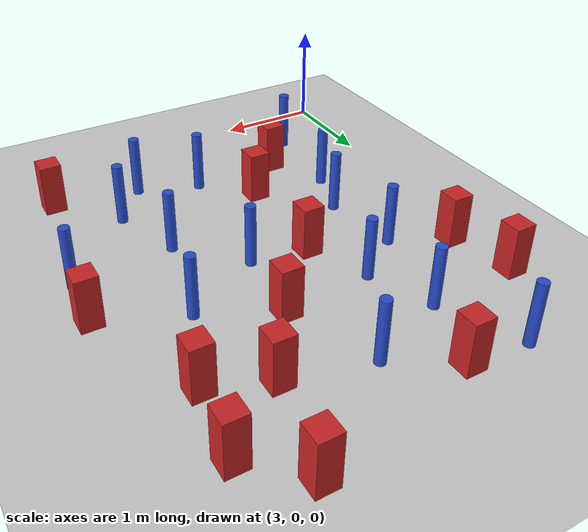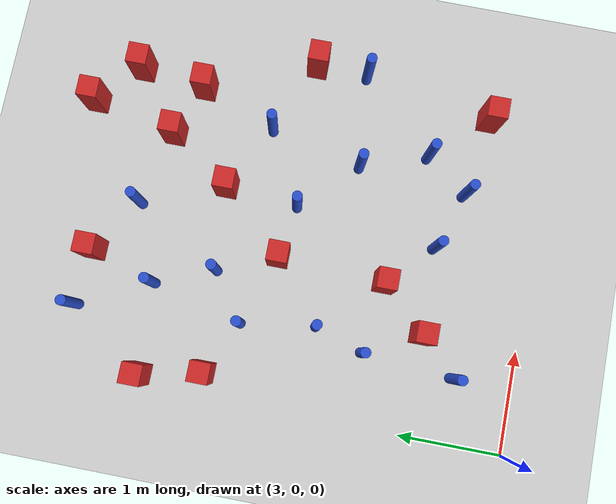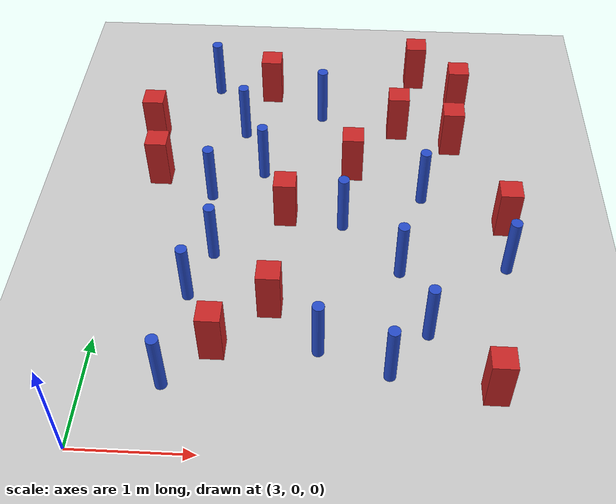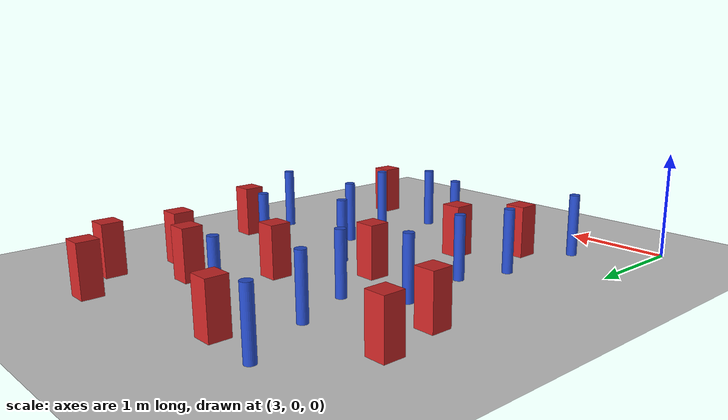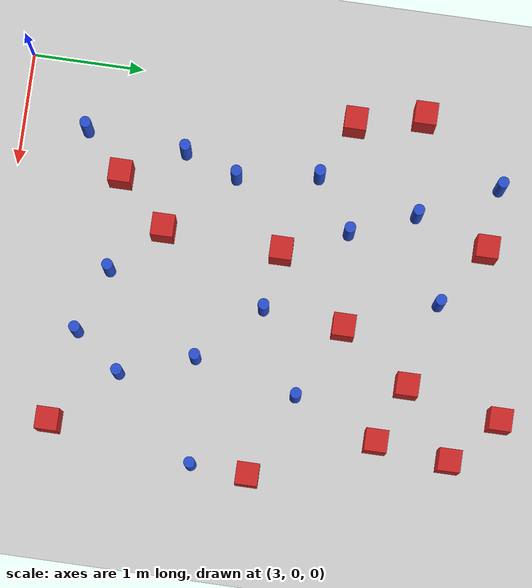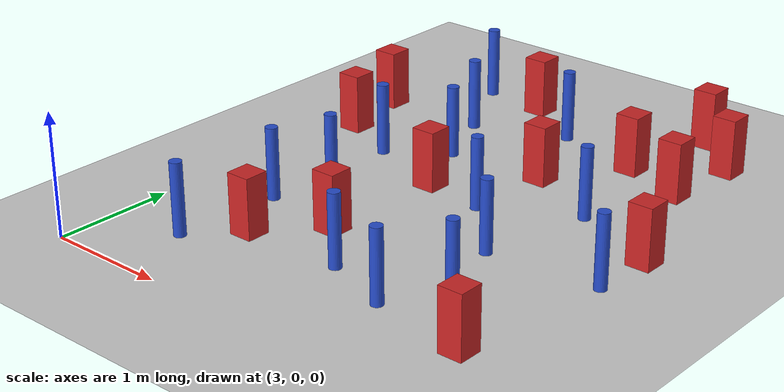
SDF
<sdf version="1.6">
 <world name="default">
  <model name="ground_plane">
   <static>1</static>
   <link name="link">
    <collision name="collision">
     <geometry><plane><normal>0 0 1</normal><size>100 100</size></plane></geometry>
     <surface><friction><ode><mu>100</mu><mu2>50</mu2></ode></friction></surface>
    </collision>
    <visual name="visual">
     <cast_shadows>0</cast_shadows>
     <geometry><plane><normal>0 0 1</normal><size>100 100</size></plane></geometry>
     <material>
      <ambient>1.0 1.0 1.0 1.0</ambient>
      <diffuse>0.8 0.8 0.8 1.0</diffuse>
      <specular>0.01 0.01 0.01 1.000000</specular>
     </material>
    </visual>
   </link>
  </model>
  <model name="square_post_obstacle7">
   <static>true</static>
   <pose>6.11921410497 4.16256446191 1.91545236811e-07 -7.35059704564e-06 1.12565212e-07 2.39332434364e-05</pose>
   <link name="link">
    <pose>0 0 0.25 0 -0 0</pose>
    <inertial>
     <mass>100</mass>
     <inertia>
      <ixx>0.166667</ixx>
      <ixy>0</ixy>
      <ixz>0</ixz>
      <iyy>0.166667</iyy>
      <iyz>0</iyz>
      <izz>0.166667</izz>
     </inertia>
    </inertial>
    <collision name="collision"><geometry><box><size>.2 .2 .5</size></box></geometry></collision>
    <visual name="visual">
     <geometry><box><size>.2 .2 .5</size></box></geometry>
     <material>
      <script><name>Gazebo/Red</name><uri>file://media/materials/scripts/gazebo.material</uri></script>
     </material>
    </visual>
   </link>
  </model>
  <model name="pole_obstacle13">
   <static>true</static>
   <pose>4.75254022368 3.89881679813 7.38925637345e-09 -8.47170692798e-08 1.24976764937e-08 -1.74513093023e-07</pose>
   <link name="link">
    <pose>0 0 0.3 0 -0 0</pose>
    <inertial>
     <mass>1</mass>
     <inertia><ixx>0.145833</ixx><ixy>0</ixy><ixz>0</ixz><iyy>0.145833</iyy><iyz>0</iyz><izz>0.125</izz></inertia>
    </inertial>
    <collision name="collision">
     <geometry><cylinder><radius>0.05</radius><length>.6</length></cylinder></geometry>
    </collision>
    <visual name="visual">
     <geometry><cylinder><radius>0.05</radius><length>.6</length></cylinder></geometry>
     <material>
      <script><name>Gazebo/Blue</name><uri>file://media/materials/scripts/gazebo.material</uri></script>
     </material>
    </visual>
   </link>
  </model>
  <model name="square_post_obstacle27">
   <static>true</static>
   <pose>3.9976284103 0.950378836151 1.91545236811e-07 -7.35059704564e-06 1.12565212e-07 2.39332434364e-05</pose>
   <link name="link">
    <pose>0 0 0.25 0 -0 0</pose>
    <inertial>
     <mass>100</mass>
     <inertia>
      <ixx>0.166667</ixx>
      <ixy>0</ixy>
      <ixz>0</ixz>
      <iyy>0.166667</iyy>
      <iyz>0</iyz>
      <izz>0.166667</izz>
     </inertia>
    </inertial>
    <collision name="collision"><geometry><box><size>.2 .2 .5</size></box></geometry></collision>
    <visual name="visual">
     <geometry><box><size>.2 .2 .5</size></box></geometry>
     <material>
      <script><name>Gazebo/Red</name><uri>file://media/materials/scripts/gazebo.material</uri></script>
     </material>
    </visual>
   </link>
  </model>
  <model name="square_post_obstacle38">
   <static>true</static>
   <pose>5.51444573957 3.71277571455 1.91545236811e-07 -7.35059704564e-06 1.12565212e-07 2.39332434364e-05</pose>
   <link name="link">
    <pose>0 0 0.25 0 -0 0</pose>
    <inertial>
     <mass>100</mass>
     <inertia>
      <ixx>0.166667</ixx>
      <ixy>0</ixy>
      <ixz>0</ixz>
      <iyy>0.166667</iyy>
      <iyz>0</iyz>
      <izz>0.166667</izz>
     </inertia>
    </inertial>
    <collision name="collision"><geometry><box><size>.2 .2 .5</size></box></geometry></collision>
    <visual name="visual">
     <geometry><box><size>.2 .2 .5</size></box></geometry>
     <material>
      <script><name>Gazebo/Red</name><uri>file://media/materials/scripts/gazebo.material</uri></script>
     </material>
    </visual>
   </link>
  </model>
  <model name="pole_obstacle39">
   <static>true</static>
   <pose>3.63261479475 0.594411479498 7.38925637345e-09 -8.471706928e-08 1.24976765177e-08 -1.74513093012e-07</pose>
   <link name="link">
    <pose>0 0 0.3 0 -0 0</pose>
    <inertial>
     <mass>1</mass>
     <inertia><ixx>0.145833</ixx><ixy>0</ixy><ixz>0</ixz><iyy>0.145833</iyy><iyz>0</iyz><izz>0.125</izz></inertia>
    </inertial>
    <collision name="collision">
     <geometry><cylinder><radius>0.05</radius><length>.6</length></cylinder></geometry>
    </collision>
    <visual name="visual">
     <geometry><cylinder><radius>0.05</radius><length>.6</length></cylinder></geometry>
     <material>
      <script><name>Gazebo/Blue</name><uri>file://media/materials/scripts/gazebo.material</uri></script>
     </material>
    </visual>
   </link>
  </model>
  <model name="pole_obstacle47">
   <static>true</static>
   <pose>5.00595628964 2.36893094893 7.38925637345e-09 -8.47170692798e-08 1.24976764937e-08 -1.74513093023e-07</pose>
   <link name="link">
    <pose>0 0 0.3 0 -0 0</pose>
    <inertial>
     <mass>1</mass>
     <inertia><ixx>0.145833</ixx><ixy>0</ixy><ixz>0</ixz><iyy>0.145833</iyy><iyz>0</iyz><izz>0.125</izz></inertia>
    </inertial>
    <collision name="collision">
     <geometry><cylinder><radius>0.05</radius><length>.6</length></cylinder></geometry>
    </collision>
    <visual name="visual">
     <geometry><cylinder><radius>0.05</radius><length>.6</length></cylinder></geometry>
     <material>
      <script><name>Gazebo/Blue</name><uri>file://media/materials/scripts/gazebo.material</uri></script>
     </material>
    </visual>
   </link>
  </model>
  <model name="square_post_obstacle52">
   <static>true</static>
   <pose>5.70429985319 4.55749865179 1.91545236811e-07 -7.35059704564e-06 1.12565212e-07 2.39332434364e-05</pose>
   <link name="link">
    <pose>0 0 0.25 0 -0 0</pose>
    <inertial>
     <mass>100</mass>
     <inertia>
      <ixx>0.166667</ixx>
      <ixy>0</ixy>
      <ixz>0</ixz>
      <iyy>0.166667</iyy>
      <iyz>0</iyz>
      <izz>0.166667</izz>
     </inertia>
    </inertial>
    <collision name="collision"><geometry><box><size>.2 .2 .5</size></box></geometry></collision>
    <visual name="visual">
     <geometry><box><size>.2 .2 .5</size></box></geometry>
     <material>
      <script><name>Gazebo/Red</name><uri>file://media/materials/scripts/gazebo.material</uri></script>
     </material>
    </visual>
   </link>
  </model>
  <model name="pole_obstacle53">
   <static>true</static>
   <pose>3.65114091582 4.30178377031 7.38925637345e-09 -8.47170692798e-08 1.24976765033e-08 -1.74513093019e-07</pose>
   <link name="link">
    <pose>0 0 0.3 0 -0 0</pose>
    <inertial>
     <mass>1</mass>
     <inertia><ixx>0.145833</ixx><ixy>0</ixy><ixz>0</ixz><iyy>0.145833</iyy><iyz>0</iyz><izz>0.125</izz></inertia>
    </inertial>
    <collision name="collision">
     <geometry><cylinder><radius>0.05</radius><length>.6</length></cylinder></geometry>
    </collision>
    <visual name="visual">
     <geometry><cylinder><radius>0.05</radius><length>.6</length></cylinder></geometry>
     <material>
      <script><name>Gazebo/Blue</name><uri>file://media/materials/scripts/gazebo.material</uri></script>
     </material>
    </visual>
   </link>
  </model>
  <model name="pole_obstacle54">
   <static>true</static>
   <pose>5.52081804444 1.83336792338 7.38925637345e-09 -8.471706928e-08 1.24976765134e-08 -1.74513093015e-07</pose>
   <link name="link">
    <pose>0 0 0.3 0 -0 0</pose>
    <inertial>
     <mass>1</mass>
     <inertia><ixx>0.145833</ixx><ixy>0</ixy><ixz>0</ixz><iyy>0.145833</iyy><iyz>0</iyz><izz>0.125</izz></inertia>
    </inertial>
    <collision name="collision">
     <geometry><cylinder><radius>0.05</radius><length>.6</length></cylinder></geometry>
    </collision>
    <visual name="visual">
     <geometry><cylinder><radius>0.05</radius><length>.6</length></cylinder></geometry>
     <material>
      <script><name>Gazebo/Blue</name><uri>file://media/materials/scripts/gazebo.material</uri></script>
     </material>
    </visual>
   </link>
  </model>
  <model name="square_post_obstacle80">
   <static>true</static>
   <pose>5.07583082805 3.09073552369 1.91545236811e-07 -7.35059704564e-06 1.12565212e-07 2.39332434364e-05</pose>
   <link name="link">
    <pose>0 0 0.25 0 -0 0</pose>
    <inertial>
     <mass>100</mass>
     <inertia>
      <ixx>0.166667</ixx>
      <ixy>0</ixy>
      <ixz>0</ixz>
      <iyy>0.166667</iyy>
      <iyz>0</iyz>
      <izz>0.166667</izz>
     </inertia>
    </inertial>
    <collision name="collision"><geometry><box><size>.2 .2 .5</size></box></geometry></collision>
    <visual name="visual">
     <geometry><box><size>.2 .2 .5</size></box></geometry>
     <material>
      <script><name>Gazebo/Red</name><uri>file://media/materials/scripts/gazebo.material</uri></script>
     </material>
    </visual>
   </link>
  </model>
  <model name="pole_obstacle96">
   <static>true</static>
   <pose>5.42826381468 0.76316016338 7.38925637345e-09 -8.47170692799e-08 1.24976765038e-08 -1.74513093018e-07</pose>
   <link name="link">
    <pose>0 0 0.3 0 -0 0</pose>
    <inertial>
     <mass>1</mass>
     <inertia><ixx>0.145833</ixx><ixy>0</ixy><ixz>0</ixz><iyy>0.145833</iyy><iyz>0</iyz><izz>0.125</izz></inertia>
    </inertial>
    <collision name="collision">
     <geometry><cylinder><radius>0.05</radius><length>.6</length></cylinder></geometry>
    </collision>
    <visual name="visual">
     <geometry><cylinder><radius>0.05</radius><length>.6</length></cylinder></geometry>
     <material>
      <script><name>Gazebo/Blue</name><uri>file://media/materials/scripts/gazebo.material</uri></script>
     </material>
    </visual>
   </link>
  </model>
  <model name="square_post_obstacle88">
   <static>true</static>
   <pose>4.21620489456 4.24878912598 1.91545236811e-07 -7.35059704564e-06 1.12565212e-07 2.39332434364e-05</pose>
   <link name="link">
    <pose>0 0 0.25 0 -0 0</pose>
    <inertial>
     <mass>100</mass>
     <inertia>
      <ixx>0.166667</ixx>
      <ixy>0</ixy>
      <ixz>0</ixz>
      <iyy>0.166667</iyy>
      <iyz>0</iyz>
      <izz>0.166667</izz>
     </inertia>
    </inertial>
    <collision name="collision"><geometry><box><size>.2 .2 .5</size></box></geometry></collision>
    <visual name="visual">
     <geometry><box><size>.2 .2 .5</size></box></geometry>
     <material>
      <script><name>Gazebo/Red</name><uri>file://media/materials/scripts/gazebo.material</uri></script>
     </material>
    </visual>
   </link>
  </model>
  <model name="square_post_obstacle91">
   <static>true</static>
   <pose>3.11571933212 3.55489792918 1.91545236811e-07 -7.35059704564e-06 1.12565212e-07 2.39332434364e-05</pose>
   <link name="link">
    <pose>0 0 0.25 0 -0 0</pose>
    <inertial>
     <mass>100</mass>
     <inertia>
      <ixx>0.166667</ixx>
      <ixy>0</ixy>
      <ixz>0</ixz>
      <iyy>0.166667</iyy>
      <iyz>0</iyz>
      <izz>0.166667</izz>
     </inertia>
    </inertial>
    <collision name="collision"><geometry><box><size>.2 .2 .5</size></box></geometry></collision>
    <visual name="visual">
     <geometry><box><size>.2 .2 .5</size></box></geometry>
     <material>
      <script><name>Gazebo/Red</name><uri>file://media/materials/scripts/gazebo.material</uri></script>
     </material>
    </visual>
   </link>
  </model>
  <model name="pole_obstacle105">
   <static>true</static>
   <pose>3.87378546488 1.96796487815 7.38925637345e-09 -8.47170692799e-08 1.24976764986e-08 -1.74513093023e-07</pose>
   <link name="link">
    <pose>0 0 0.3 0 -0 0</pose>
    <inertial>
     <mass>1</mass>
     <inertia><ixx>0.145833</ixx><ixy>0</ixy><ixz>0</ixz><iyy>0.145833</iyy><iyz>0</iyz><izz>0.125</izz></inertia>
    </inertial>
    <collision name="collision">
     <geometry><cylinder><radius>0.05</radius><length>.6</length></cylinder></geometry>
    </collision>
    <visual name="visual">
     <geometry><cylinder><radius>0.05</radius><length>.6</length></cylinder></geometry>
     <material>
      <script><name>Gazebo/Blue</name><uri>file://media/materials/scripts/gazebo.material</uri></script>
     </material>
    </visual>
   </link>
  </model>
  <model name="pole_obstacle107">
   <static>true</static>
   <pose>3.76734034066 2.6973369474 7.38925637345e-09 -8.47170692798e-08 1.24976764939e-08 -1.74513093025e-07</pose>
   <link name="link">
    <pose>0 0 0.3 0 -0 0</pose>
    <inertial>
     <mass>1</mass>
     <inertia><ixx>0.145833</ixx><ixy>0</ixy><ixz>0</ixz><iyy>0.145833</iyy><iyz>0</iyz><izz>0.125</izz></inertia>
    </inertial>
    <collision name="collision">
     <geometry><cylinder><radius>0.05</radius><length>.6</length></cylinder></geometry>
    </collision>
    <visual name="visual">
     <geometry><cylinder><radius>0.05</radius><length>.6</length></cylinder></geometry>
     <material>
      <script><name>Gazebo/Blue</name><uri>file://media/materials/scripts/gazebo.material</uri></script>
     </material>
    </visual>
   </link>
  </model>
  <model name="square_post_obstacle126">
   <static>true</static>
   <pose>6.48133287327 2.43271555359 1.91545236811e-07 -7.35059704564e-06 1.12565212e-07 2.39332434364e-05</pose>
   <link name="link">
    <pose>0 0 0.25 0 -0 0</pose>
    <inertial>
     <mass>100</mass>
     <inertia>
      <ixx>0.166667</ixx>
      <ixy>0</ixy>
      <ixz>0</ixz>
      <iyy>0.166667</iyy>
      <iyz>0</iyz>
      <izz>0.166667</izz>
     </inertia>
    </inertial>
    <collision name="collision"><geometry><box><size>.2 .2 .5</size></box></geometry></collision>
    <visual name="visual">
     <geometry><box><size>.2 .2 .5</size></box></geometry>
     <material>
      <script><name>Gazebo/Red</name><uri>file://media/materials/scripts/gazebo.material</uri></script>
     </material>
    </visual>
   </link>
  </model>
  <model name="pole_obstacle155">
   <static>true</static>
   <pose>3.99479648377 3.60211802251 7.38925637345e-09 -8.47170692796e-08 1.24976764765e-08 -1.74513093035e-07</pose>
   <link name="link">
    <pose>0 0 0.3 0 -0 0</pose>
    <inertial>
     <mass>1</mass>
     <inertia><ixx>0.145833</ixx><ixy>0</ixy><ixz>0</ixz><iyy>0.145833</iyy><iyz>0</iyz><izz>0.125</izz></inertia>
    </inertial>
    <collision name="collision">
     <geometry><cylinder><radius>0.05</radius><length>.6</length></cylinder></geometry>
    </collision>
    <visual name="visual">
     <geometry><cylinder><radius>0.05</radius><length>.6</length></cylinder></geometry>
     <material>
      <script><name>Gazebo/Blue</name><uri>file://media/materials/scripts/gazebo.material</uri></script>
     </material>
    </visual>
   </link>
  </model>
  <model name="pole_obstacle158">
   <static>true</static>
   <pose>3.71012371541 1.49089795242 7.38925637345e-09 -8.471706928e-08 1.24976765152e-08 -1.74513093012e-07</pose>
   <link name="link">
    <pose>0 0 0.3 0 -0 0</pose>
    <inertial>
     <mass>1</mass>
     <inertia><ixx>0.145833</ixx><ixy>0</ixy><ixz>0</ixz><iyy>0.145833</iyy><iyz>0</iyz><izz>0.125</izz></inertia>
    </inertial>
    <collision name="collision">
     <geometry><cylinder><radius>0.05</radius><length>.6</length></cylinder></geometry>
    </collision>
    <visual name="visual">
     <geometry><cylinder><radius>0.05</radius><length>.6</length></cylinder></geometry>
     <material>
      <script><name>Gazebo/Blue</name><uri>file://media/materials/scripts/gazebo.material</uri></script>
     </material>
    </visual>
   </link>
  </model>
  <model name="pole_obstacle164">
   <static>true</static>
   <pose>5.74631214114 1.17899582524 7.38925637345e-09 -8.471706928e-08 1.24976765134e-08 -1.74513093015e-07</pose>
   <link name="link">
    <pose>0 0 0.3 0 -0 0</pose>
    <inertial>
     <mass>1</mass>
     <inertia><ixx>0.145833</ixx><ixy>0</ixy><ixz>0</ixz><iyy>0.145833</iyy><iyz>0</iyz><izz>0.125</izz></inertia>
    </inertial>
    <collision name="collision">
     <geometry><cylinder><radius>0.05</radius><length>.6</length></cylinder></geometry>
    </collision>
    <visual name="visual">
     <geometry><cylinder><radius>0.05</radius><length>.6</length></cylinder></geometry>
     <material>
      <script><name>Gazebo/Blue</name><uri>file://media/materials/scripts/gazebo.material</uri></script>
     </material>
    </visual>
   </link>
  </model>
  <model name="pole_obstacle176">
   <static>true</static>
   <pose>4.84932029015 0.967150271005 7.38925637345e-09 -8.471706928e-08 1.24976765166e-08 -1.74513093011e-07</pose>
   <link name="link">
    <pose>0 0 0.3 0 -0 0</pose>
    <inertial>
     <mass>1</mass>
     <inertia><ixx>0.145833</ixx><ixy>0</ixy><ixz>0</ixz><iyy>0.145833</iyy><iyz>0</iyz><izz>0.125</izz></inertia>
    </inertial>
    <collision name="collision">
     <geometry><cylinder><radius>0.05</radius><length>.6</length></cylinder></geometry>
    </collision>
    <visual name="visual">
     <geometry><cylinder><radius>0.05</radius><length>.6</length></cylinder></geometry>
     <material>
      <script><name>Gazebo/Blue</name><uri>file://media/materials/scripts/gazebo.material</uri></script>
     </material>
    </visual>
   </link>
  </model>
  <model name="pole_obstacle183">
   <static>true</static>
   <pose>5.73505445391 2.75520296593 7.38925637345e-09 -8.47170692798e-08 1.24976764937e-08 -1.74513093023e-07</pose>
   <link name="link">
    <pose>0 0 0.3 0 -0 0</pose>
    <inertial>
     <mass>1</mass>
     <inertia><ixx>0.145833</ixx><ixy>0</ixy><ixz>0</ixz><iyy>0.145833</iyy><iyz>0</iyz><izz>0.125</izz></inertia>
    </inertial>
    <collision name="collision">
     <geometry><cylinder><radius>0.05</radius><length>.6</length></cylinder></geometry>
    </collision>
    <visual name="visual">
     <geometry><cylinder><radius>0.05</radius><length>.6</length></cylinder></geometry>
     <material>
      <script><name>Gazebo/Blue</name><uri>file://media/materials/scripts/gazebo.material</uri></script>
     </material>
    </visual>
   </link>
  </model>
  <model name="square_post_obstacle175">
   <static>true</static>
   <pose>6.24695338278 0.636101388864 1.91545236811e-07 -7.35059704564e-06 1.12565212e-07 2.39332434364e-05</pose>
   <link name="link">
    <pose>0 0 0.25 0 -0 0</pose>
    <inertial>
     <mass>100</mass>
     <inertia>
      <ixx>0.166667</ixx>
      <ixy>0</ixy>
      <ixz>0</ixz>
      <iyy>0.166667</iyy>
      <iyz>0</iyz>
      <izz>0.166667</izz>
     </inertia>
    </inertial>
    <collision name="collision"><geometry><box><size>.2 .2 .5</size></box></geometry></collision>
    <visual name="visual">
     <geometry><box><size>.2 .2 .5</size></box></geometry>
     <material>
      <script><name>Gazebo/Red</name><uri>file://media/materials/scripts/gazebo.material</uri></script>
     </material>
    </visual>
   </link>
  </model>
  <model name="square_post_obstacle178">
   <static>true</static>
   <pose>4.42445138412 1.39243161162 1.91545236811e-07 -7.35059704564e-06 1.12565212e-07 2.39332434364e-05</pose>
   <link name="link">
    <pose>0 0 0.25 0 -0 0</pose>
    <inertial>
     <mass>100</mass>
     <inertia>
      <ixx>0.166667</ixx>
      <ixy>0</ixy>
      <ixz>0</ixz>
      <iyy>0.166667</iyy>
      <iyz>0</iyz>
      <izz>0.166667</izz>
     </inertia>
    </inertial>
    <collision name="collision"><geometry><box><size>.2 .2 .5</size></box></geometry></collision>
    <visual name="visual">
     <geometry><box><size>.2 .2 .5</size></box></geometry>
     <material>
      <script><name>Gazebo/Red</name><uri>file://media/materials/scripts/gazebo.material</uri></script>
     </material>
    </visual>
   </link>
  </model>
  <model name="pole_obstacle209">
   <static>true</static>
   <pose>4.23056079083 3.02612691199 7.38925637345e-09 -8.47170692798e-08 1.24976764937e-08 -1.74513093023e-07</pose>
   <link name="link">
    <pose>0 0 0.3 0 -0 0</pose>
    <inertial>
     <mass>1</mass>
     <inertia><ixx>0.145833</ixx><ixy>0</ixy><ixz>0</ixz><iyy>0.145833</iyy><iyz>0</iyz><izz>0.125</izz></inertia>
    </inertial>
    <collision name="collision">
     <geometry><cylinder><radius>0.05</radius><length>.6</length></cylinder></geometry>
    </collision>
    <visual name="visual">
     <geometry><cylinder><radius>0.05</radius><length>.6</length></cylinder></geometry>
     <material>
      <script><name>Gazebo/Blue</name><uri>file://media/materials/scripts/gazebo.material</uri></script>
     </material>
    </visual>
   </link>
  </model>
  <model name="square_post_obstacle213">
   <static>true</static>
   <pose>4.48013512129 2.45299588831 1.91545236811e-07 -7.35059704564e-06 1.12565212e-07 2.39332434364e-05</pose>
   <link name="link">
    <pose>0 0 0.25 0 -0 0</pose>
    <inertial>
     <mass>100</mass>
     <inertia>
      <ixx>0.166667</ixx>
      <ixy>0</ixy>
      <ixz>0</ixz>
      <iyy>0.166667</iyy>
      <iyz>0</iyz>
      <izz>0.166667</izz>
     </inertia>
    </inertial>
    <collision name="collision"><geometry><box><size>.2 .2 .5</size></box></geometry></collision>
    <visual name="visual">
     <geometry><box><size>.2 .2 .5</size></box></geometry>
     <material>
      <script><name>Gazebo/Red</name><uri>file://media/materials/scripts/gazebo.material</uri></script>
     </material>
    </visual>
   </link>
  </model>
  <model name="square_post_obstacle216">
   <static>true</static>
   <pose>6.03698007213 3.50699843909 1.91545236811e-07 -7.35059704564e-06 1.12565212e-07 2.39332434364e-05</pose>
   <link name="link">
    <pose>0 0 0.25 0 -0 0</pose>
    <inertial>
     <mass>100</mass>
     <inertia>
      <ixx>0.166667</ixx>
      <ixy>0</ixy>
      <ixz>0</ixz>
      <iyy>0.166667</iyy>
      <iyz>0</iyz>
      <izz>0.166667</izz>
     </inertia>
    </inertial>
    <collision name="collision"><geometry><box><size>.2 .2 .5</size></box></geometry></collision>
    <visual name="visual">
     <geometry><box><size>.2 .2 .5</size></box></geometry>
     <material>
      <script><name>Gazebo/Red</name><uri>file://media/materials/scripts/gazebo.material</uri></script>
     </material>
    </visual>
   </link>
  </model>
  <model name="square_post_obstacle217">
   <static>true</static>
   <pose>3.24662598388 2.94776564826 1.91545236811e-07 -7.35059704564e-06 1.12565212e-07 2.39332434364e-05</pose>
   <link name="link">
    <pose>0 0 0.25 0 -0 0</pose>
    <inertial>
     <mass>100</mass>
     <inertia>
      <ixx>0.166667</ixx>
      <ixy>0</ixy>
      <ixz>0</ixz>
      <iyy>0.166667</iyy>
      <iyz>0</iyz>
      <izz>0.166667</izz>
     </inertia>
    </inertial>
    <collision name="collision"><geometry><box><size>.2 .2 .5</size></box></geometry></collision>
    <visual name="visual">
     <geometry><box><size>.2 .2 .5</size></box></geometry>
     <material>
      <script><name>Gazebo/Red</name><uri>file://media/materials/scripts/gazebo.material</uri></script>
     </material>
    </visual>
   </link>
  </model>
  <model name="pole_obstacle218">
   <static>true</static>
   <pose>6.45753000957 1.92299002078 7.38925637345e-09 -8.471706928e-08 1.24976765134e-08 -1.74513093015e-07</pose>
   <link name="link">
    <pose>0 0 0.3 0 -0 0</pose>
    <inertial>
     <mass>1</mass>
     <inertia><ixx>0.145833</ixx><ixy>0</ixy><ixz>0</ixz><iyy>0.145833</iyy><iyz>0</iyz><izz>0.125</izz></inertia>
    </inertial>
    <collision name="collision">
     <geometry><cylinder><radius>0.05</radius><length>.6</length></cylinder></geometry>
    </collision>
    <visual name="visual">
     <geometry><cylinder><radius>0.05</radius><length>.6</length></cylinder></geometry>
     <material>
      <script><name>Gazebo/Blue</name><uri>file://media/materials/scripts/gazebo.material</uri></script>
     </material>
    </visual>
   </link>
  </model>
 </world>
</sdf>
